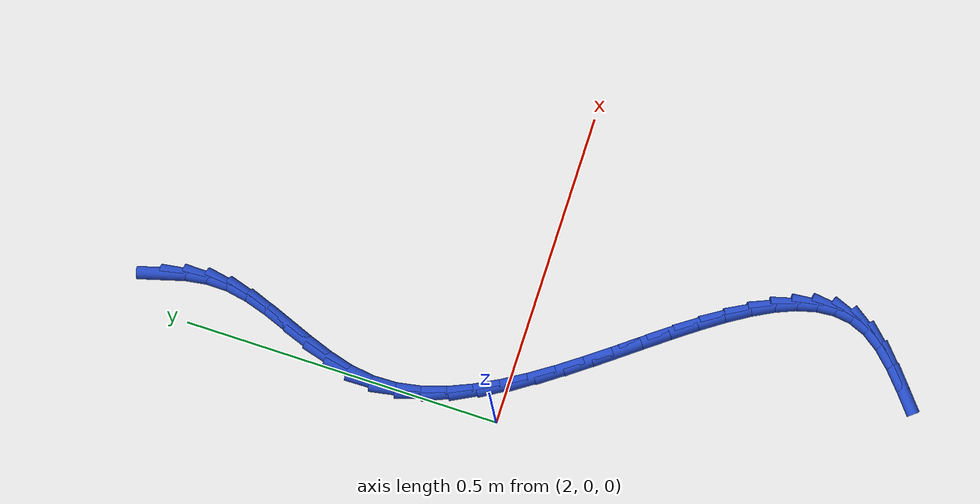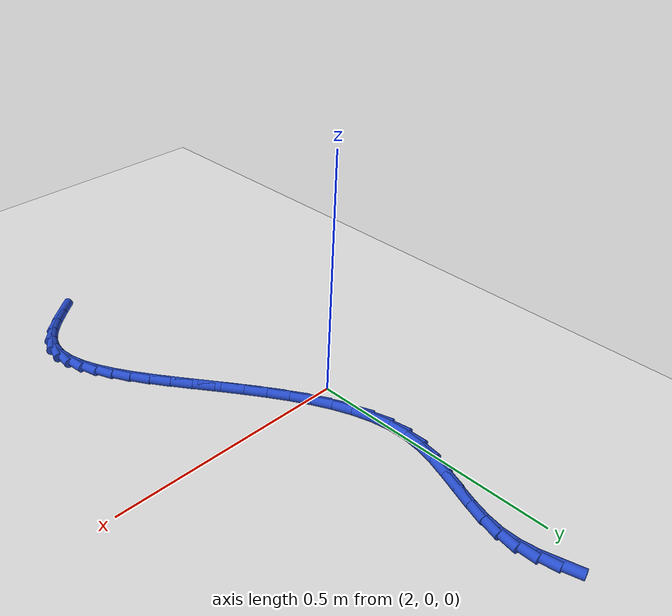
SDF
<sdf version="1.6">
 <world name="default">
  <model name="ground_plane">
   <static>1</static>
   <link name="link">
    <collision name="collision">
     <geometry><plane><normal>0 0 1</normal><size>100 100</size></plane></geometry>
     <surface><friction><ode><mu>100</mu><mu2>50</mu2></ode></friction></surface>
    </collision>
    <visual name="visual">
     <cast_shadows>0</cast_shadows>
     <geometry><plane><normal>0 0 1</normal><size>100 100</size></plane></geometry>
     <material>
      <script><uri>file://media/materials/scripts/gazebo.material</uri><name>Gazebo/WhiteGlow</name></script>
     </material>
    </visual>
   </link>
  </model>
  <model name="line">
   <link name="link_83">
    <pose>2.059597811045568 0.5598402094067411 0.01 0 1.57 -1.3001757621355365</pose>
    <collision name="collision">
     <geometry><cylinder><radius>0.01</radius><length>0.08</length></cylinder></geometry>
    </collision>
    <visual name="visual">
     <material>
      <script><name>Gazebo/Blue</name><uri>file://media/materials/scripts/gazebo.material</uri></script>
     </material>
     <geometry><cylinder><radius>0.01</radius><length>0.08</length></cylinder></geometry>
    </visual>
   </link>
   <link name="link_84">
    <pose>2.069140194929732 0.5254441112437157 0.01 0 1.57 -1.4273782947889486</pose>
    <collision name="collision">
     <geometry><cylinder><radius>0.01</radius><length>0.08</length></cylinder></geometry>
    </collision>
    <visual name="visual">
     <material>
      <script><name>Gazebo/Blue</name><uri>file://media/materials/scripts/gazebo.material</uri></script>
     </material>
     <geometry><cylinder><radius>0.01</radius><length>0.08</length></cylinder></geometry>
    </visual>
   </link>
   <link name="link_85">
    <pose>2.0740612428659335 0.4913670736077029 0.01 0 1.57 1.5566850005064563</pose>
    <collision name="collision">
     <geometry><cylinder><radius>0.01</radius><length>0.08</length></cylinder></geometry>
    </collision>
    <visual name="visual">
     <material>
      <script><name>Gazebo/Blue</name><uri>file://media/materials/scripts/gazebo.material</uri></script>
     </material>
     <geometry><cylinder><radius>0.01</radius><length>0.08</length></cylinder></geometry>
    </visual>
   </link>
   <link name="link_86">
    <pose>2.0735774460698426 0.4570850597818261 0.01 0 1.57 1.3921760137843597</pose>
    <collision name="collision">
     <geometry><cylinder><radius>0.01</radius><length>0.08</length></cylinder></geometry>
    </collision>
    <visual name="visual">
     <material>
      <script><name>Gazebo/Blue</name><uri>file://media/materials/scripts/gazebo.material</uri></script>
     </material>
     <geometry><cylinder><radius>0.01</radius><length>0.08</length></cylinder></geometry>
    </visual>
   </link>
   <link name="link_87">
    <pose>2.06727141039835 0.4221571876987912 0.01 0 1.57 1.2765794140994777</pose>
    <collision name="collision">
     <geometry><cylinder><radius>0.01</radius><length>0.08</length></cylinder></geometry>
    </collision>
    <visual name="visual">
     <material>
      <script><name>Gazebo/Blue</name><uri>file://media/materials/scripts/gazebo.material</uri></script>
     </material>
     <geometry><cylinder><radius>0.01</radius><length>0.08</length></cylinder></geometry>
    </visual>
   </link>
   <link name="link_88">
    <pose>2.0564792668799377 0.38654084882303374 0.01 0 1.57 1.2160941329787327</pose>
    <collision name="collision">
     <geometry><cylinder><radius>0.01</radius><length>0.08</length></cylinder></geometry>
    </collision>
    <visual name="visual">
     <material>
      <script><name>Gazebo/Blue</name><uri>file://media/materials/scripts/gazebo.material</uri></script>
     </material>
     <geometry><cylinder><radius>0.01</radius><length>0.08</length></cylinder></geometry>
    </visual>
   </link>
   <link name="link_89">
    <pose>2.0430615145799518 0.3503125329435246 0.01 0 1.57 1.2026075113831154</pose>
    <collision name="collision">
     <geometry><cylinder><radius>0.01</radius><length>0.08</length></cylinder></geometry>
    </collision>
    <visual name="visual">
     <material>
      <script><name>Gazebo/Blue</name><uri>file://media/materials/scripts/gazebo.material</uri></script>
     </material>
     <geometry><cylinder><radius>0.01</radius><length>0.08</length></cylinder></geometry>
    </visual>
   </link>
   <link name="link_90">
    <pose>2.0288787473862837 0.31354875138602933 0.01 0 1.57 1.232704617838608</pose>
    <collision name="collision">
     <geometry><cylinder><radius>0.01</radius><length>0.08</length></cylinder></geometry>
    </collision>
    <visual name="visual">
     <material>
      <script><name>Gazebo/Blue</name><uri>file://media/materials/scripts/gazebo.material</uri></script>
     </material>
     <geometry><cylinder><radius>0.01</radius><length>0.08</length></cylinder></geometry>
    </visual>
   </link>
   <link name="link_91">
    <pose>2.0157915591868263 0.27632601547631336 0.01 0 1.57 1.3076393432558557</pose>
    <collision name="collision">
     <geometry><cylinder><radius>0.01</radius><length>0.08</length></cylinder></geometry>
    </collision>
    <visual name="visual">
     <material>
      <script><name>Gazebo/Blue</name><uri>file://media/materials/scripts/gazebo.material</uri></script>
     </material>
     <geometry><cylinder><radius>0.01</radius><length>0.08</length></cylinder></geometry>
    </visual>
   </link>
   <link name="link_92">
    <pose>2.0056605438694723 0.23872083654014217 0.01 0 1.57 1.4315258631400285</pose>
    <collision name="collision">
     <geometry><cylinder><radius>0.01</radius><length>0.08</length></cylinder></geometry>
    </collision>
    <visual name="visual">
     <material>
      <script><name>Gazebo/Blue</name><uri>file://media/materials/scripts/gazebo.material</uri></script>
     </material>
     <geometry><cylinder><radius>0.01</radius><length>0.08</length></cylinder></geometry>
    </visual>
   </link>
   <link name="link_93">
    <pose>2.0003462422195857 0.20080972600051544 0.01 0 1.57 -1.548091661008903</pose>
    <collision name="collision">
     <geometry><cylinder><radius>0.01</radius><length>0.08</length></cylinder></geometry>
    </collision>
    <visual name="visual">
     <material>
      <script><name>Gazebo/Blue</name><uri>file://media/materials/scripts/gazebo.material</uri></script>
     </material>
     <geometry><cylinder><radius>0.01</radius><length>0.08</length></cylinder></geometry>
    </visual>
   </link>
   <link name="link_94">
    <pose>2.001212338396129 0.16267010505810556 0.01 0 1.57 -1.3976108487618173</pose>
    <collision name="collision">
     <geometry><cylinder><radius>0.01</radius><length>0.08</length></cylinder></geometry>
    </collision>
    <visual name="visual">
     <material>
      <script><name>Gazebo/Blue</name><uri>file://media/materials/scripts/gazebo.material</uri></script>
     </material>
     <geometry><cylinder><radius>0.01</radius><length>0.08</length></cylinder></geometry>
    </visual>
   </link>
   <link name="link_95">
    <pose>2.0079102889929348 0.12438253011663214 0.01 0 1.57 -1.2720263748876282</pose>
    <collision name="collision">
     <geometry><cylinder><radius>0.01</radius><length>0.08</length></cylinder></geometry>
    </collision>
    <visual name="visual">
     <material>
      <script><name>Gazebo/Blue</name><uri>file://media/materials/scripts/gazebo.material</uri></script>
     </material>
     <geometry><cylinder><radius>0.01</radius><length>0.08</length></cylinder></geometry>
    </visual>
   </link>
   <link name="link_96">
    <pose>2.0197229912218457 0.08602823243666329 0.01 0 1.57 -1.1707841965090566</pose>
    <collision name="collision">
     <geometry><cylinder><radius>0.01</radius><length>0.08</length></cylinder></geometry>
    </collision>
    <visual name="visual">
     <material>
      <script><name>Gazebo/Blue</name><uri>file://media/materials/scripts/gazebo.material</uri></script>
     </material>
     <geometry><cylinder><radius>0.01</radius><length>0.08</length></cylinder></geometry>
    </visual>
   </link>
   <link name="link_97">
    <pose>2.035933342294706 0.04768844327876558 0.01 0 1.57 -1.0911948846889015</pose>
    <collision name="collision">
     <geometry><cylinder><radius>0.01</radius><length>0.08</length></cylinder></geometry>
    </collision>
    <visual name="visual">
     <material>
      <script><name>Gazebo/Blue</name><uri>file://media/materials/scripts/gazebo.material</uri></script>
     </material>
     <geometry><cylinder><radius>0.01</radius><length>0.08</length></cylinder></geometry>
    </visual>
   </link>
   <link name="link_98">
    <pose>2.055824239423359 0.009444393903507051 0.01 0 1.57 -1.0301046464720196</pose>
    <collision name="collision">
     <geometry><cylinder><radius>0.01</radius><length>0.08</length></cylinder></geometry>
    </collision>
    <visual name="visual">
     <material>
      <script><name>Gazebo/Blue</name><uri>file://media/materials/scripts/gazebo.material</uri></script>
     </material>
     <geometry><cylinder><radius>0.01</radius><length>0.08</length></cylinder></geometry>
    </visual>
   </link>
   <link name="link_99">
    <pose>2.0786785798196474 -0.0286226844285447 0.01 0 1.57 -0.984723154989439</pose>
    <collision name="collision">
     <geometry><cylinder><radius>0.01</radius><length>0.08</length></cylinder></geometry>
    </collision>
    <visual name="visual">
     <material>
      <script><name>Gazebo/Blue</name><uri>file://media/materials/scripts/gazebo.material</uri></script>
     </material>
     <geometry><cylinder><radius>0.01</radius><length>0.08</length></cylinder></geometry>
    </visual>
   </link>
   <link name="link_100">
    <pose>2.103779260695415 -0.06643156045682215 0.01 0 1.57 -0.95291835308452</pose>
    <collision name="collision">
     <geometry><cylinder><radius>0.01</radius><length>0.08</length></cylinder></geometry>
    </collision>
    <visual name="visual">
     <material>
      <script><name>Gazebo/Blue</name><uri>file://media/materials/scripts/gazebo.material</uri></script>
     </material>
     <geometry><cylinder><radius>0.01</radius><length>0.08</length></cylinder></geometry>
    </visual>
   </link>
   <link name="link_101">
    <pose>2.130409179262505 -0.10390100292075771 0.01 0 1.57 -0.9332734195478382</pose>
    <collision name="collision">
     <geometry><cylinder><radius>0.01</radius><length>0.08</length></cylinder></geometry>
    </collision>
    <visual name="visual">
     <material>
      <script><name>Gazebo/Blue</name><uri>file://media/materials/scripts/gazebo.material</uri></script>
     </material>
     <geometry><cylinder><radius>0.01</radius><length>0.08</length></cylinder></geometry>
    </visual>
   </link>
   <link name="link_102">
    <pose>2.157851232732761 -0.14094978055978383 0.01 0 1.57 -0.9250762514470253</pose>
    <collision name="collision">
     <geometry><cylinder><radius>0.01</radius><length>0.08</length></cylinder></geometry>
    </collision>
    <visual name="visual">
     <material>
      <script><name>Gazebo/Blue</name><uri>file://media/materials/scripts/gazebo.material</uri></script>
     </material>
     <geometry><cylinder><radius>0.01</radius><length>0.08</length></cylinder></geometry>
    </visual>
   </link>
   <link name="link_103">
    <pose>2.1853883183180254 -0.17749666211333287 0.01 0 1.57 -0.9283246161717083</pose>
    <collision name="collision">
     <geometry><cylinder><radius>0.01</radius><length>0.08</length></cylinder></geometry>
    </collision>
    <visual name="visual">
     <material>
      <script><name>Gazebo/Blue</name><uri>file://media/materials/scripts/gazebo.material</uri></script>
     </material>
     <geometry><cylinder><radius>0.01</radius><length>0.08</length></cylinder></geometry>
    </visual>
   </link>
   <link name="link_104">
    <pose>2.2123033332301425 -0.2134604163208375 0.01 0 1.57 -0.9437893936717991</pose>
    <collision name="collision">
     <geometry><cylinder><radius>0.01</radius><length>0.08</length></cylinder></geometry>
    </collision>
    <visual name="visual">
     <material>
      <script><name>Gazebo/Blue</name><uri>file://media/materials/scripts/gazebo.material</uri></script>
     </material>
     <geometry><cylinder><radius>0.01</radius><length>0.08</length></cylinder></geometry>
    </visual>
   </link>
   <link name="link_105">
    <pose>2.2378791746809554 -0.24875981192172988 0.01 0 1.57 -0.9731650967037024</pose>
    <collision name="collision">
     <geometry><cylinder><radius>0.01</radius><length>0.08</length></cylinder></geometry>
    </collision>
    <visual name="visual">
     <material>
      <script><name>Gazebo/Blue</name><uri>file://media/materials/scripts/gazebo.material</uri></script>
     </material>
     <geometry><cylinder><radius>0.01</radius><length>0.08</length></cylinder></geometry>
    </visual>
   </link>
   <link name="link_106">
    <pose>2.2613987398823068 -0.2833136176554426 0.01 0 1.57 -1.0193323648522494</pose>
    <collision name="collision">
     <geometry><cylinder><radius>0.01</radius><length>0.08</length></cylinder></geometry>
    </collision>
    <visual name="visual">
     <material>
      <script><name>Gazebo/Blue</name><uri>file://media/materials/scripts/gazebo.material</uri></script>
     </material>
     <geometry><cylinder><radius>0.01</radius><length>0.08</length></cylinder></geometry>
    </visual>
   </link>
   <link name="link_107">
    <pose>2.2821449260460414 -0.3170406022614081 0.01 0 1.57 -1.086734090222477</pose>
    <collision name="collision">
     <geometry><cylinder><radius>0.01</radius><length>0.08</length></cylinder></geometry>
    </collision>
    <visual name="visual">
     <material>
      <script><name>Gazebo/Blue</name><uri>file://media/materials/scripts/gazebo.material</uri></script>
     </material>
     <geometry><cylinder><radius>0.01</radius><length>0.08</length></cylinder></geometry>
    </visual>
   </link>
   <link name="link_108">
    <pose>2.299400630384001 -0.34985953447905865 0.01 0 1.57 -1.181753862368123</pose>
    <collision name="collision">
     <geometry><cylinder><radius>0.01</radius><length>0.08</length></cylinder></geometry>
    </collision>
    <visual name="visual">
     <material>
      <script><name>Gazebo/Blue</name><uri>file://media/materials/scripts/gazebo.material</uri></script>
     </material>
     <geometry><cylinder><radius>0.01</radius><length>0.08</length></cylinder></geometry>
    </visual>
   </link>
   <link name="link_109">
    <pose>2.3124487501080297 -0.38168918304782695 0.01 0 1.57 -1.31259339599404</pose>
    <collision name="collision">
     <geometry><cylinder><radius>0.01</radius><length>0.08</length></cylinder></geometry>
    </collision>
    <visual name="visual">
     <material>
      <script><name>Gazebo/Blue</name><uri>file://media/materials/scripts/gazebo.material</uri></script>
     </material>
     <geometry><cylinder><radius>0.01</radius><length>0.08</length></cylinder></geometry>
    </visual>
   </link>
   <link name="link_110">
    <pose>2.320572182429971 -0.4124483167071452 0.01 0 1.57 -1.4871734504502616</pose>
    <collision name="collision">
     <geometry><cylinder><radius>0.01</radius><length>0.08</length></cylinder></geometry>
    </collision>
    <visual name="visual">
     <material>
      <script><name>Gazebo/Blue</name><uri>file://media/materials/scripts/gazebo.material</uri></script>
     </material>
     <geometry><cylinder><radius>0.01</radius><length>0.08</length></cylinder></geometry>
    </visual>
   </link>
   <link name="link_111">
    <pose>2.3230538245616676 -0.442055704196446 0.01 0 1.57 1.4349913725137746</pose>
    <collision name="collision">
     <geometry><cylinder><radius>0.01</radius><length>0.08</length></cylinder></geometry>
    </collision>
    <visual name="visual">
     <material>
      <script><name>Gazebo/Blue</name><uri>file://media/materials/scripts/gazebo.material</uri></script>
     </material>
     <geometry><cylinder><radius>0.01</radius><length>0.08</length></cylinder></geometry>
    </visual>
   </link>
   <link name="link_112">
    <pose>2.319176573714963 -0.4704301142551618 0.01 0 1.57 1.1861818333536593</pose>
    <collision name="collision">
     <geometry><cylinder><radius>0.01</radius><length>0.08</length></cylinder></geometry>
    </collision>
    <visual name="visual">
     <material>
      <script><name>Gazebo/Blue</name><uri>file://media/materials/scripts/gazebo.material</uri></script>
     </material>
     <geometry><cylinder><radius>0.01</radius><length>0.08</length></cylinder></geometry>
    </visual>
   </link>
   <link name="link_113">
    <pose>2.308223327101701 -0.4974903156227249 0.01 0 1.57 0.9514150385253297</pose>
    <collision name="collision">
     <geometry><cylinder><radius>0.01</radius><length>0.08</length></cylinder></geometry>
    </collision>
    <visual name="visual">
     <material>
      <script><name>Gazebo/Blue</name><uri>file://media/materials/scripts/gazebo.material</uri></script>
     </material>
     <geometry><cylinder><radius>0.01</radius><length>0.08</length></cylinder></geometry>
    </visual>
   </link>
   <link name="link_114">
    <pose>2.2898526496191325 -0.5232565317282415 0.01 0 1.57 0.7947449975428909</pose>
    <collision name="collision">
     <geometry><cylinder><radius>0.01</radius><length>0.08</length></cylinder></geometry>
    </collision>
    <visual name="visual">
     <material>
      <script><name>Gazebo/Blue</name><uri>file://media/materials/scripts/gazebo.material</uri></script>
     </material>
     <geometry><cylinder><radius>0.01</radius><length>0.08</length></cylinder></geometry>
    </visual>
   </link>
   <link name="link_115">
    <pose>2.265375763843314 -0.5481953109801869 0.01 0 1.57 0.7086230574194732</pose>
    <collision name="collision">
     <geometry><cylinder><radius>0.01</radius><length>0.08</length></cylinder></geometry>
    </collision>
    <visual name="visual">
     <material>
      <script><name>Gazebo/Blue</name><uri>file://media/materials/scripts/gazebo.material</uri></script>
     </material>
     <geometry><cylinder><radius>0.01</radius><length>0.08</length></cylinder></geometry>
    </visual>
   </link>
   <link name="link_116">
    <pose>2.236558222098224 -0.5728959003458305 0.01 0 1.57 0.6735266521598807</pose>
    <collision name="collision">
     <geometry><cylinder><radius>0.01</radius><length>0.08</length></cylinder></geometry>
    </collision>
    <visual name="visual">
     <material>
      <script><name>Gazebo/Blue</name><uri>file://media/materials/scripts/gazebo.material</uri></script>
     </material>
     <geometry><cylinder><radius>0.01</radius><length>0.08</length></cylinder></geometry>
    </visual>
   </link>
  </model>
 </world>
</sdf>
